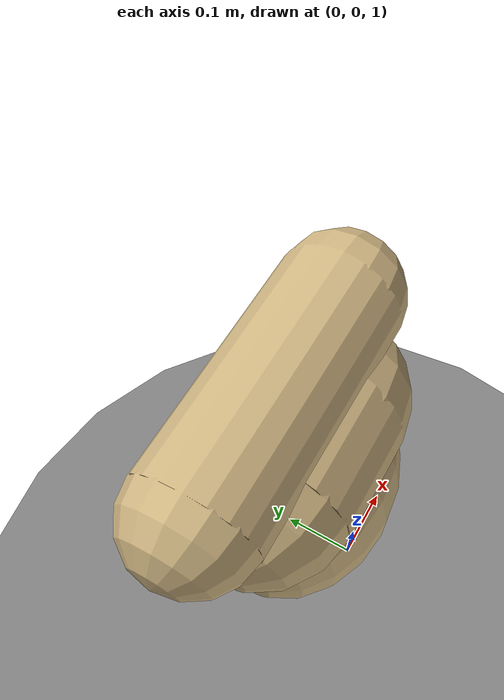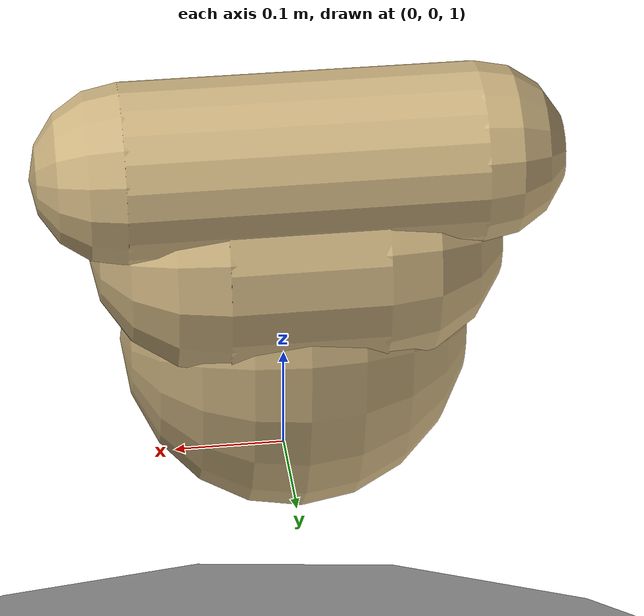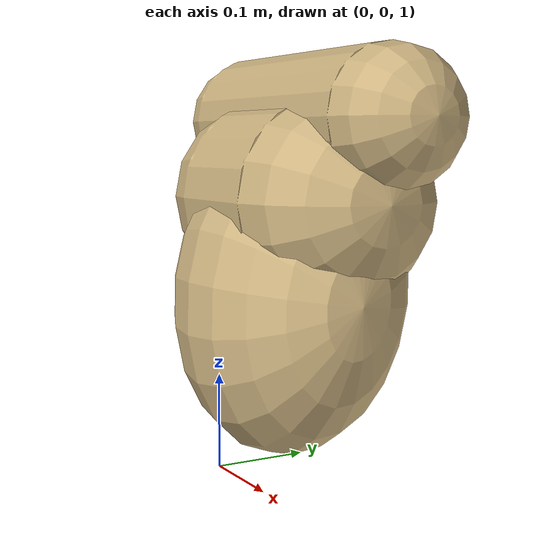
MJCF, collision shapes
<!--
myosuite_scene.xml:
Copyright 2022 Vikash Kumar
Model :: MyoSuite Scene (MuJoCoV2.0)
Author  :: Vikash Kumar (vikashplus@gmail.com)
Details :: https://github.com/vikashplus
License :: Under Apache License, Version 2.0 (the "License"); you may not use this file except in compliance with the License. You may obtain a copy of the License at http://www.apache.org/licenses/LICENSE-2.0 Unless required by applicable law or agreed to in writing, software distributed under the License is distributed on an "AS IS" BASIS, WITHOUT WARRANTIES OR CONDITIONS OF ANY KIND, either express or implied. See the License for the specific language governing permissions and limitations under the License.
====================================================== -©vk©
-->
<?xml version="1.0" ?>
<mujoco model="Torso Base">
    <include file="../scene/myosuite_scene.xml"/>
    <compiler angle="radian" meshdir=".." texturedir=".."/>

    <default>
        <default class="myo_coll">
            <geom group="4" contype="1" conaffinity="0" condim="3" rgba="0.8 0.7 .5 .1" margin="0.001"/>
        </default>
    </default>

    <asset>
        <mesh file="meshes/human_lowpoly_nohand.stl" name="human_body" scale="1.0 1.0 1"/>
    </asset>

    <worldbody>
        <body name="torso_base">
            <geom name="body" type="mesh" mesh="human_body" euler="0 0 3.14" contype="0" conaffinity="0" pos="0 0 0"/>
            <body name="thorax" pos="0 0.08 1.4" euler="1.57 -1.57 0">
                <geom name="thorax_coll1" type="ellipsoid" class="myo_coll" size="0.12 0.18 0.150" pos="-0.005 -0.215 0" euler="0 0 0.13"/>
                <geom name="thorax_coll2" type="capsule" class="myo_coll" size="0.110 0.065" pos="-0.020 -0.115 0" euler="0 0 0"/>
                <geom name="thorax_coll3" type="capsule" class="myo_coll" size="0.075 0.145" pos="-0.040 -0.030 0" euler="0 0 0"/>
            </body>
            <site name="arm_attach_r" pos="-0.02 0.08 1.4" size="0.01"/>
            <site name="arm_attach_l" pos="0.02 0.08 1.4" size="0.01"/>
        </body>
    </worldbody>
</mujoco>

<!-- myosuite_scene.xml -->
<mujoco model="myosuite_scene">
    <!-- load texture and msh files -©vk©-->

    <compiler angle="radian" meshdir=".." texturedir=".."/>
    <asset>
        <!-- Scene -©vk©-->
        <texture name="textscene" type="2d" file="scene/myosuite_scene.png"/>
        <material name="matscene" texture="textscene"/>
        <mesh name="meshscene" file="scene/myosuite_scene_noFloor.msh" scale=".01 .01 .01"/>

        <!-- Floor -©vk©-->
        <texture name="texfloor" type="2d" height="1" width="1" file="scene/floor0.png"/>
        <material name="matfloor" reflectance="0.01" texture="texfloor" texrepeat="1 1" texuniform="true"/>

        <!-- Logo -©vk©-->
        <texture name="textlogo" type="2d" file="scene/myosuite_logo.png"/>
        <mesh name="logo" file="scene/myosuite_logo.msh" scale="1 1 1"/>
        <material name="matlogo" texture="textlogo"/>

    </asset>

    <statistic extent="5" center="0 -1 1"/>

    <visual>
        <scale light=".05" framewidth=".005"/>
        <headlight ambient=".5 .5 .5" diffuse="0.50 0.50 0.50" specular="0.50 0.50 0.50"/>
        <global elevation="-15"/>
        <rgba actuator='.7 .4 .4 1' actuatorpositive='1 0 0 1' actuatornegative='.175 .1 .1 1'/>
    </visual>

    <!-- Add files to the world -©vk©-->
    <worldbody>
        <!-- indoor lights -©vk©-->
        <light directional="false" diffuse=".5 .5 .5" specular="0.25 0.25 0.25" pos="0 -3 3" dir="0 1 -1" mode="trackcom"/>
        <camera name="side_view" pos="-3 0 2.25" xyaxes="0 -1 0 1 0 2" mode="trackcom"/>
        <camera name="front_view" pos="0 -3 2.25" xyaxes="1 0 0 0 1 2" mode="trackcom"/>

        <geom name="floor" pos="0 0 -.4" size="7 7 .1" conaffinity="1" contype="1" type="plane" material="matfloor" condim="3"/>
        <geom type="mesh" mesh="meshscene" material="matscene" pos="0 0 -.41326" euler="0 0 0"  conaffinity="0" contype="0"/>
        <geom type="cylinder" pos="0 0 -.190" size="1.05 .205" contype="1" conaffinity="1" group="4"/>
        <geom type="mesh" mesh="logo" material="matlogo" group="1" conaffinity="0" contype="0" euler="1.57 0 0" pos="0 6.95 2.1"/>

    </worldbody>
</mujoco>
